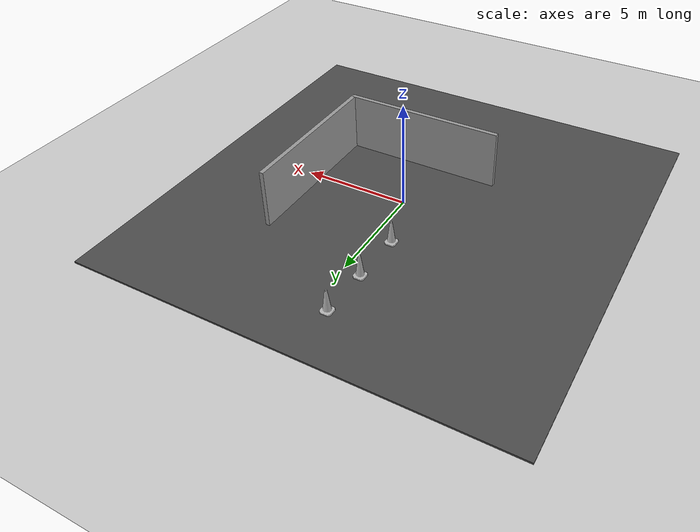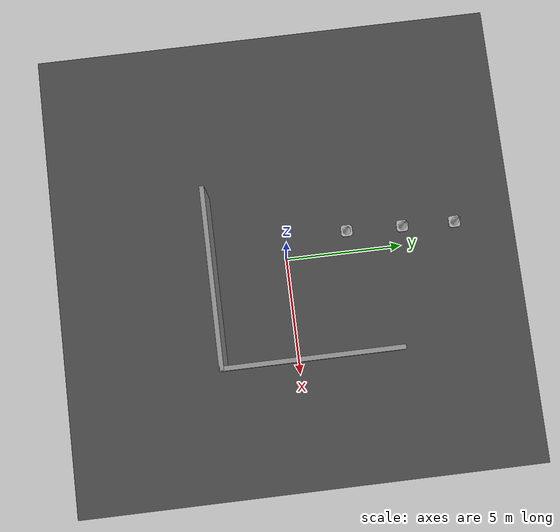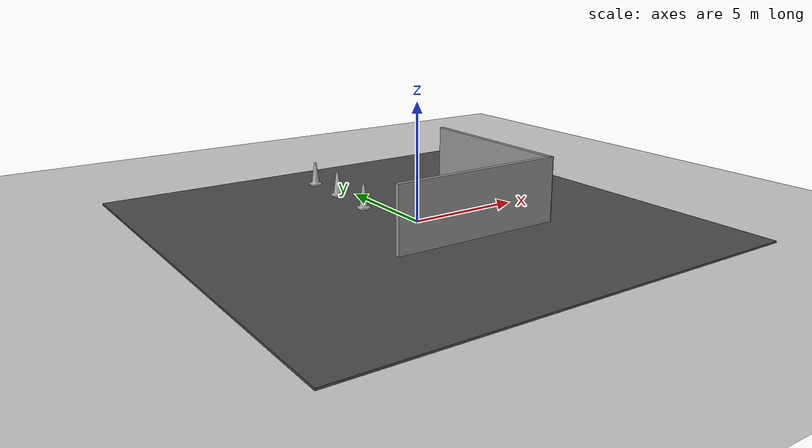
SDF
<sdf version="1.7">
 <world name="default">
  <light name="sun" type="directional">
   <pose>0 0 10 0 -0 0</pose>
   <diffuse>0.8 0.8 0.8 1</diffuse>
   <specular>0.2 0.2 0.2 1</specular>
   <attenuation>
    <range>1000</range>
    <constant>0.9</constant>
    <linear>0.01</linear>
    <quadratic>0.001</quadratic>
   </attenuation>
   <direction>-0.5 0.1 -0.9</direction>
   <spot><inner_angle>0</inner_angle><outer_angle>0</outer_angle><falloff>0</falloff></spot>
  </light>
  <model name="ground_plane">
   <static>1</static>
   <link name="link">
    <collision name="collision">
     <geometry><plane><normal>0 0 1</normal><size>100 100</size></plane></geometry>
     <surface><friction><ode><mu>100</mu><mu2>50</mu2></ode></friction></surface>
    </collision>
    <visual name="visual">
     <cast_shadows>0</cast_shadows>
     <geometry><plane><normal>0 0 1</normal><size>100 100</size></plane></geometry>
     <material>
      <script><uri>file://media/materials/scripts/gazebo.material</uri><name>Gazebo/Grey</name></script>
     </material>
    </visual>
   </link>
  </model>
  <gravity>0 0 -9.8</gravity>
  <magnetic_field>6e-06 2.3e-05 -4.2e-05</magnetic_field>
  <atmosphere type="adiabatic"/>
  <physics type="ode">
   <max_step_size>0.001</max_step_size>
   <real_time_factor>1</real_time_factor>
   <real_time_update_rate>1000</real_time_update_rate>
  </physics>
  <scene><ambient>0.4 0.4 0.4 1</ambient><background>0.7 0.7 0.7 1</background><shadows>1</shadows></scene>
  <audio><device>default</device></audio>
  <spherical_coordinates>
   <surface_model>EARTH_WGS84</surface_model>
   <latitude_deg>0</latitude_deg>
   <longitude_deg>0</longitude_deg>
   <elevation>0</elevation>
   <heading_deg>0</heading_deg>
  </spherical_coordinates>
  <model name="asphalt_plane">
   <static>1</static>
   <link name="link">
    <collision name="collision"><geometry><box><size>20 20 0.1</size></box></geometry></collision>
    <visual name="visual">
     <cast_shadows>0</cast_shadows>
     <geometry><box><size>20 20 0.1</size></box></geometry>
     <material>
      <script>
       <uri>model://asphalt_plane/materials/scripts</uri>
       <uri>model://asphalt_plane/materials/textures</uri>
       <name>vrc/asphalt</name>
      </script>
     </material>
    </visual>
   </link>
   <pose>-0.080201 0.008393 0 0 -0 0</pose>
  </model>
  <model name="Construction Cone">
   <link name="link">
    <collision name="collision">
     <geometry>
      <mesh><scale>10 10 10</scale><uri>model://construction_cone/meshes/construction_cone.dae</uri></mesh>
     </geometry>
    </collision>
    <visual name="visual">
     <geometry>
      <mesh><scale>10 10 10</scale><uri>model://construction_cone/meshes/construction_cone.dae</uri></mesh>
     </geometry>
    </visual>
    <inertial>
     <inertia><ixx>1</ixx><ixy>0</ixy><ixz>0</ixz><iyy>1</iyy><iyz>0</iyz><izz>1</izz></inertia>
     <mass>1</mass>
    </inertial>
   </link>
   <pose>-0.917037 2.74834 0.05 0 -0 -0.000256</pose>
  </model>
  <model name="Construction Cone_0">
   <link name="link">
    <collision name="collision">
     <geometry>
      <mesh><scale>10 10 10</scale><uri>model://construction_cone/meshes/construction_cone.dae</uri></mesh>
     </geometry>
    </collision>
    <visual name="visual">
     <geometry>
      <mesh><scale>10 10 10</scale><uri>model://construction_cone/meshes/construction_cone.dae</uri></mesh>
     </geometry>
    </visual>
    <inertial>
     <inertia><ixx>1</ixx><ixy>0</ixy><ixz>0</ixz><iyy>1</iyy><iyz>0</iyz><izz>1</izz></inertia>
     <mass>1</mass>
    </inertial>
   </link>
   <pose>-0.842749 5.17866 0.05 1e-06 -1e-06 -0.000256</pose>
  </model>
  <model name="Construction Cone_1">
   <link name="link">
    <collision name="collision">
     <geometry>
      <mesh><scale>10 10 10</scale><uri>model://construction_cone/meshes/construction_cone.dae</uri></mesh>
     </geometry>
    </collision>
    <visual name="visual">
     <geometry>
      <mesh><scale>10 10 10</scale><uri>model://construction_cone/meshes/construction_cone.dae</uri></mesh>
     </geometry>
    </visual>
    <inertial>
     <inertia><ixx>1</ixx><ixy>0</ixy><ixz>0</ixz><iyy>1</iyy><iyz>0</iyz><izz>1</izz></inertia>
     <mass>1</mass>
    </inertial>
   </link>
   <pose>-0.761445 7.46744 0.05 0 -0 0</pose>
  </model>
  <model name="grey_wall">
   <static>1</static>
   <link name="link">
    <pose>0 0 1.4 0 -0 0</pose>
    <collision name="collision"><geometry><box><size>7.5 0.2 2.8</size></box></geometry></collision>
    <visual name="visual">
     <cast_shadows>0</cast_shadows>
     <geometry><box><size>7.5 0.2 2.8</size></box></geometry>
     <material>
      <script>
       <uri>model://grey_wall/materials/scripts</uri>
       <uri>model://grey_wall/materials/textures</uri>
       <name>vrc/grey_wall</name>
      </script>
     </material>
    </visual>
   </link>
   <pose>0.695631 -3.13598 0 0 -0 0</pose>
  </model>
  <model name="grey_wall_0">
   <static>1</static>
   <link name="link">
    <pose>0 0 1.4 0 -0 0</pose>
    <collision name="collision"><geometry><box><size>7.5 0.2 2.8</size></box></geometry></collision>
    <visual name="visual">
     <cast_shadows>0</cast_shadows>
     <geometry><box><size>7.5 0.2 2.8</size></box></geometry>
     <material>
      <script>
       <uri>model://grey_wall/materials/scripts</uri>
       <uri>model://grey_wall/materials/textures</uri>
       <name>vrc/grey_wall</name>
      </script>
     </material>
    </visual>
   </link>
   <pose>4.38547 0.523281 0 0 -0 1.5708</pose>
  </model>
 </world>
</sdf>
